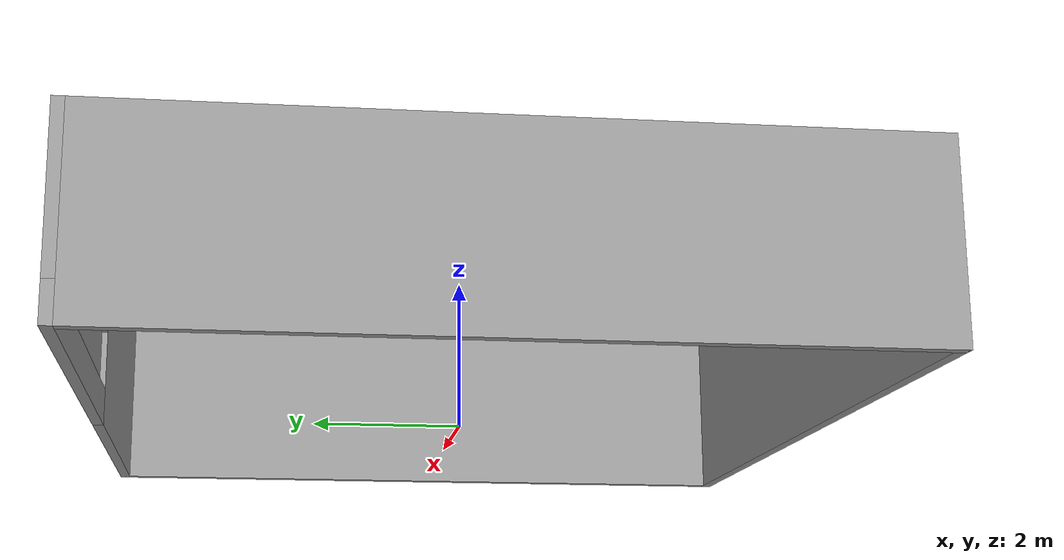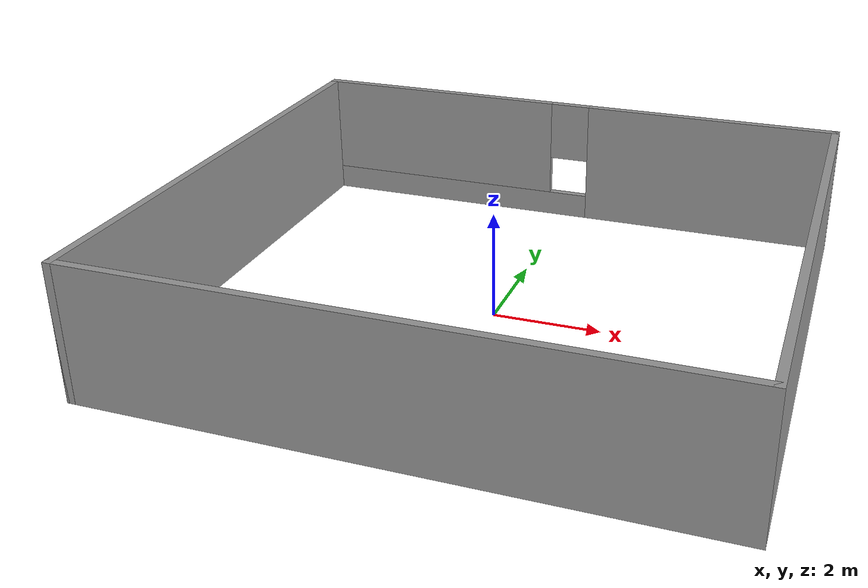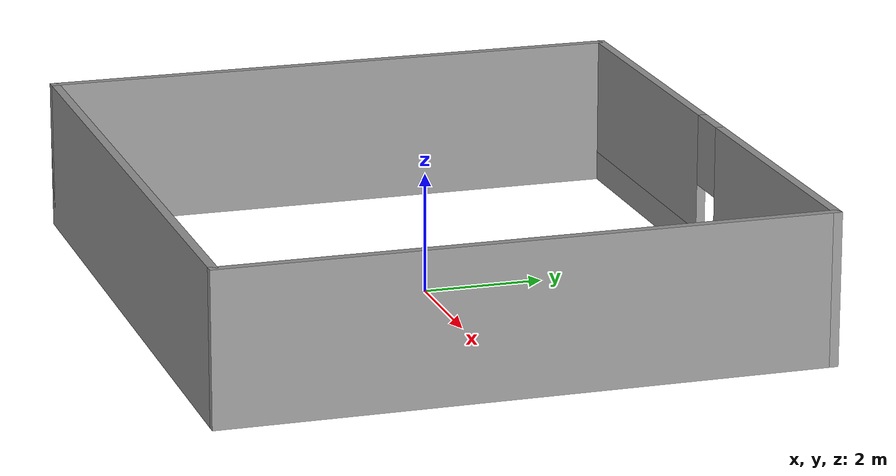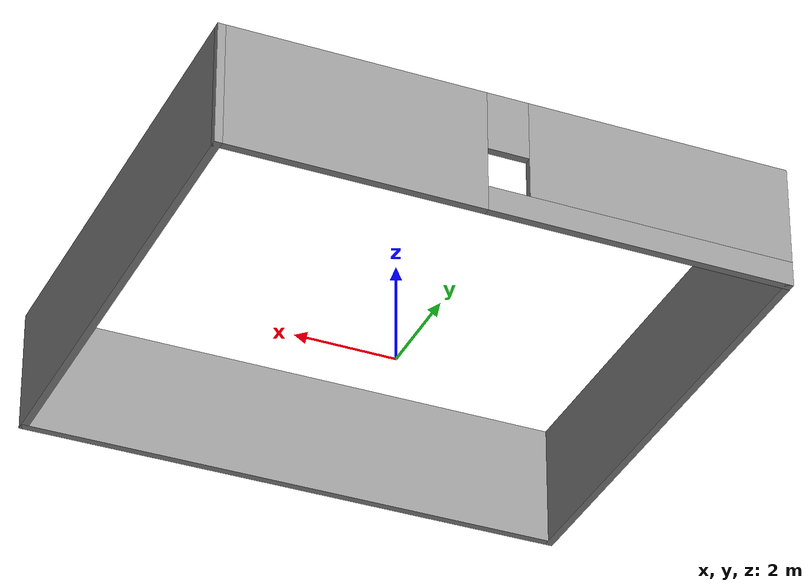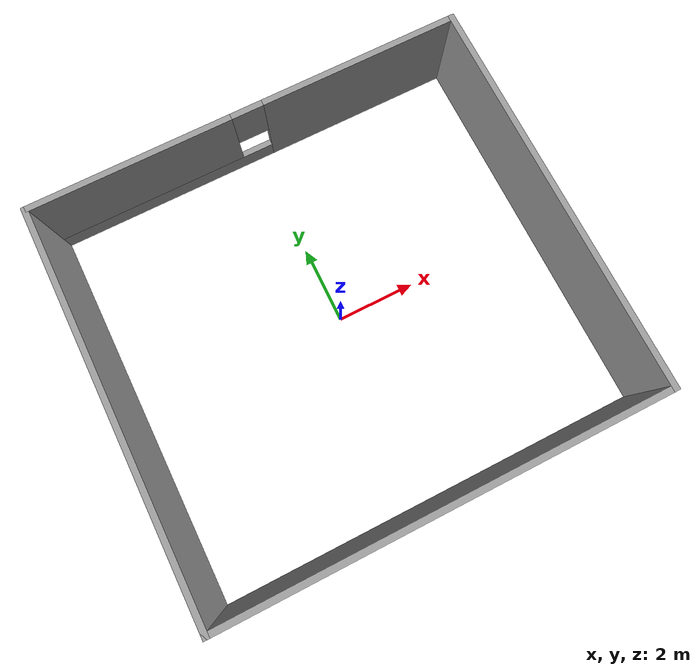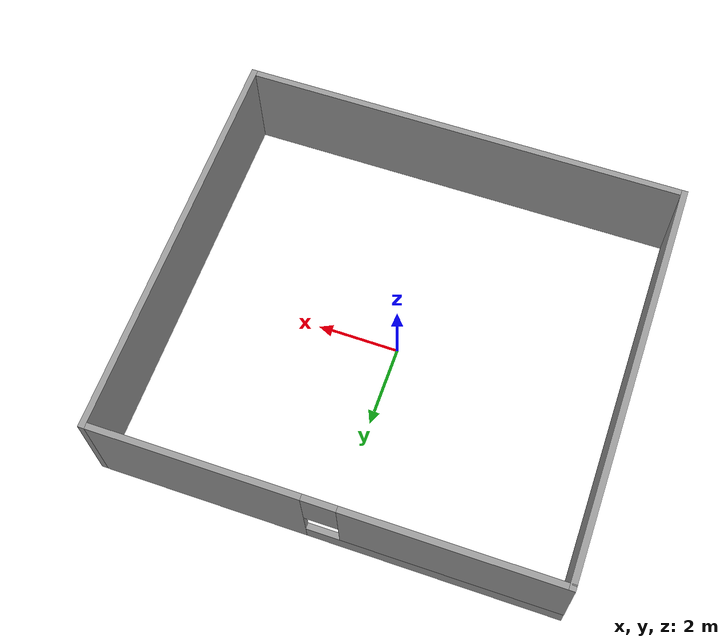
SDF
<?xml version='1.0'?>
<sdf version='1.6'>
  <model name='Walls'>
    <link name='Wall_3'>
      <pose frame=''>-5.425 0 0 0 0 -1.5708</pose>
      <self_collide>0</self_collide>
      <enable_wind>0</enable_wind>
      <kinematic>0</kinematic>
      <visual name='Wall_3_Visual'>
        <pose frame=''>0 0 1.25 0 -0 0</pose>
        <geometry>
          <box>
            <size>10 0.15 2.5</size>
          </box>
        </geometry>
        <material>
          <script>
            <uri>file://media/materials/scripts/gazebo.material</uri>
            <name>Gazebo/Grey</name>
          </script>
          <ambient>1 1 1 1</ambient>
          <shader type='pixel'/>
        </material>
        <meta>
          <layer>0</layer>
        </meta>
        <transparency>0</transparency>
        <cast_shadows>1</cast_shadows>
      </visual>
      <collision name='Wall_3_Collision'>
        <laser_retro>0</laser_retro>
        <max_contacts>10</max_contacts>
        <pose frame=''>0 0 1.25 0 -0 0</pose>
        <geometry>
          <box>
            <size>10 0.15 2.5</size>
          </box>
        </geometry>
        <surface>
          <friction>
            <ode>
              <mu>1</mu>
              <mu2>1</mu2>
              <fdir1>0 0 0</fdir1>
              <slip1>0</slip1>
              <slip2>0</slip2>
            </ode>
            <torsional>
              <coefficient>1</coefficient>
              <patch_radius>0</patch_radius>
              <surface_radius>0</surface_radius>
              <use_patch_radius>1</use_patch_radius>
              <ode>
                <slip>0</slip>
              </ode>
            </torsional>
          </friction>
          <bounce>
            <restitution_coefficient>0</restitution_coefficient>
            <threshold>1e+06</threshold>
          </bounce>
          <contact>
            <collide_without_contact>0</collide_without_contact>
            <collide_without_contact_bitmask>1</collide_without_contact_bitmask>
            <collide_bitmask>1</collide_bitmask>
            <ode>
              <soft_cfm>0</soft_cfm>
              <soft_erp>0.2</soft_erp>
              <kp>1e+13</kp>
              <kd>1</kd>
              <max_vel>0.01</max_vel>
              <min_depth>0</min_depth>
            </ode>
            <bullet>
              <split_impulse>1</split_impulse>
              <split_impulse_penetration_threshold>-0.01</split_impulse_penetration_threshold>
              <soft_cfm>0</soft_cfm>
              <soft_erp>0.2</soft_erp>
              <kp>1e+13</kp>
              <kd>1</kd>
            </bullet>
          </contact>
        </surface>
      </collision>
    </link>
    <link name='Wall_4'>
      <pose frame=''>0 -4.925 0 0 -0 0</pose>
      <self_collide>0</self_collide>
      <enable_wind>0</enable_wind>
      <kinematic>0</kinematic>
      <visual name='Wall_4_Visual'>
        <pose frame=''>0 0 1.25 0 -0 0</pose>
        <geometry>
          <box>
            <size>11 0.15 2.5</size>
          </box>
        </geometry>
        <material>
          <script>
            <uri>file://media/materials/scripts/gazebo.material</uri>
            <name>Gazebo/Grey</name>
          </script>
          <ambient>1 1 1 1</ambient>
          <shader type='pixel'/>
        </material>
        <meta>
          <layer>0</layer>
        </meta>
        <transparency>0</transparency>
        <cast_shadows>1</cast_shadows>
      </visual>
      <collision name='Wall_4_Collision'>
        <laser_retro>0</laser_retro>
        <max_contacts>10</max_contacts>
        <pose frame=''>0 0 1.25 0 -0 0</pose>
        <geometry>
          <box>
            <size>11 0.15 2.5</size>
          </box>
        </geometry>
        <surface>
          <friction>
            <ode>
              <mu>1</mu>
              <mu2>1</mu2>
              <fdir1>0 0 0</fdir1>
              <slip1>0</slip1>
              <slip2>0</slip2>
            </ode>
            <torsional>
              <coefficient>1</coefficient>
              <patch_radius>0</patch_radius>
              <surface_radius>0</surface_radius>
              <use_patch_radius>1</use_patch_radius>
              <ode>
                <slip>0</slip>
              </ode>
            </torsional>
          </friction>
          <bounce>
            <restitution_coefficient>0</restitution_coefficient>
            <threshold>1e+06</threshold>
          </bounce>
          <contact>
            <collide_without_contact>0</collide_without_contact>
            <collide_without_contact_bitmask>1</collide_without_contact_bitmask>
            <collide_bitmask>1</collide_bitmask>
            <ode>
              <soft_cfm>0</soft_cfm>
              <soft_erp>0.2</soft_erp>
              <kp>1e+13</kp>
              <kd>1</kd>
              <max_vel>0.01</max_vel>
              <min_depth>0</min_depth>
            </ode>
            <bullet>
              <split_impulse>1</split_impulse>
              <split_impulse_penetration_threshold>-0.01</split_impulse_penetration_threshold>
              <soft_cfm>0</soft_cfm>
              <soft_erp>0.2</soft_erp>
              <kp>1e+13</kp>
              <kd>1</kd>
            </bullet>
          </contact>
        </surface>
      </collision>
    </link>
    <link name='Wall_5'>
      <pose frame=''>5.425 0 0 0 -0 1.5708</pose>
      <self_collide>0</self_collide>
      <enable_wind>0</enable_wind>
      <kinematic>0</kinematic>
      <visual name='Wall_5_Visual'>
        <pose frame=''>0 0 1.25 0 -0 0</pose>
        <geometry>
          <box>
            <size>10 0.15 2.5</size>
          </box>
        </geometry>
        <material>
          <script>
            <uri>file://media/materials/scripts/gazebo.material</uri>
            <name>Gazebo/Grey</name>
          </script>
          <ambient>1 1 1 1</ambient>
          <shader type='pixel'/>
        </material>
        <meta>
          <layer>0</layer>
        </meta>
        <transparency>0</transparency>
        <cast_shadows>1</cast_shadows>
      </visual>
      <collision name='Wall_5_Collision'>
        <laser_retro>0</laser_retro>
        <max_contacts>10</max_contacts>
        <pose frame=''>0 0 1.25 0 -0 0</pose>
        <geometry>
          <box>
            <size>10 0.15 2.5</size>
          </box>
        </geometry>
        <surface>
          <friction>
            <ode>
              <mu>1</mu>
              <mu2>1</mu2>
              <fdir1>0 0 0</fdir1>
              <slip1>0</slip1>
              <slip2>0</slip2>
            </ode>
            <torsional>
              <coefficient>1</coefficient>
              <patch_radius>0</patch_radius>
              <surface_radius>0</surface_radius>
              <use_patch_radius>1</use_patch_radius>
              <ode>
                <slip>0</slip>
              </ode>
            </torsional>
          </friction>
          <bounce>
            <restitution_coefficient>0</restitution_coefficient>
            <threshold>1e+06</threshold>
          </bounce>
          <contact>
            <collide_without_contact>0</collide_without_contact>
            <collide_without_contact_bitmask>1</collide_without_contact_bitmask>
            <collide_bitmask>1</collide_bitmask>
            <ode>
              <soft_cfm>0</soft_cfm>
              <soft_erp>0.2</soft_erp>
              <kp>1e+13</kp>
              <kd>1</kd>
              <max_vel>0.01</max_vel>
              <min_depth>0</min_depth>
            </ode>
            <bullet>
              <split_impulse>1</split_impulse>
              <split_impulse_penetration_threshold>-0.01</split_impulse_penetration_threshold>
              <soft_cfm>0</soft_cfm>
              <soft_erp>0.2</soft_erp>
              <kp>1e+13</kp>
              <kd>1</kd>
            </bullet>
          </contact>
        </surface>
      </collision>
    </link>
    <link name='Wall_6'>
      <pose frame=''>0 4.925 0 0 -0 3.14159</pose>
      <self_collide>0</self_collide>
      <enable_wind>0</enable_wind>
      <kinematic>0</kinematic>
      <visual name='Wall_6_Visual_0'>
        <pose frame=''>-2.96625 0 1.25 0 -0 0</pose>
        <geometry>
          <box>
            <size>5.0675 0.15 2.5</size>
          </box>
        </geometry>
        <material>
          <script>
            <uri>file://media/materials/scripts/gazebo.material</uri>
            <name>Gazebo/Grey</name>
          </script>
          <ambient>1 1 1 1</ambient>
          <shader type='pixel'/>
        </material>
        <meta>
          <layer>0</layer>
        </meta>
        <transparency>0</transparency>
        <cast_shadows>1</cast_shadows>
      </visual>
      <visual name='Wall_6_Visual_1'>
        <pose frame=''>2.53375 0 0.25 0 -0 0</pose>
        <geometry>
          <box>
            <size>5.9325 0.15 0.5</size>
          </box>
        </geometry>
        <material>
          <script>
            <uri>file://media/materials/scripts/gazebo.material</uri>
            <name>Gazebo/Grey</name>
          </script>
          <ambient>1 1 1 1</ambient>
          <shader type='pixel'/>
        </material>
        <meta>
          <layer>0</layer>
        </meta>
        <transparency>0</transparency>
        <cast_shadows>1</cast_shadows>
      </visual>
      <visual name='Wall_6_Visual_2'>
        <pose frame=''>2.93375 0 1.5 0 -0 0</pose>
        <geometry>
          <box>
            <size>5.1325 0.15 2</size>
          </box>
        </geometry>
        <material>
          <script>
            <uri>file://media/materials/scripts/gazebo.material</uri>
            <name>Gazebo/Grey</name>
          </script>
          <ambient>1 1 1 1</ambient>
          <shader type='pixel'/>
        </material>
        <meta>
          <layer>0</layer>
        </meta>
        <transparency>0</transparency>
        <cast_shadows>1</cast_shadows>
      </visual>
      <visual name='Wall_6_Visual_3'>
        <pose frame=''>-0.032496 0 1.9 0 -0 0</pose>
        <geometry>
          <box>
            <size>0.8 0.15 1.2</size>
          </box>
        </geometry>
        <material>
          <script>
            <uri>file://media/materials/scripts/gazebo.material</uri>
            <name>Gazebo/Grey</name>
          </script>
          <ambient>1 1 1 1</ambient>
          <shader type='pixel'/>
        </material>
        <meta>
          <layer>0</layer>
        </meta>
        <transparency>0</transparency>
        <cast_shadows>1</cast_shadows>
      </visual>
      <collision name='Wall_6_Collision_0'>
        <laser_retro>0</laser_retro>
        <max_contacts>10</max_contacts>
        <pose frame=''>-2.96625 0 1.25 0 -0 0</pose>
        <geometry>
          <box>
            <size>5.0675 0.15 2.5</size>
          </box>
        </geometry>
        <surface>
          <friction>
            <ode>
              <mu>1</mu>
              <mu2>1</mu2>
              <fdir1>0 0 0</fdir1>
              <slip1>0</slip1>
              <slip2>0</slip2>
            </ode>
            <torsional>
              <coefficient>1</coefficient>
              <patch_radius>0</patch_radius>
              <surface_radius>0</surface_radius>
              <use_patch_radius>1</use_patch_radius>
              <ode>
                <slip>0</slip>
              </ode>
            </torsional>
          </friction>
          <bounce>
            <restitution_coefficient>0</restitution_coefficient>
            <threshold>1e+06</threshold>
          </bounce>
          <contact>
            <collide_without_contact>0</collide_without_contact>
            <collide_without_contact_bitmask>1</collide_without_contact_bitmask>
            <collide_bitmask>1</collide_bitmask>
            <ode>
              <soft_cfm>0</soft_cfm>
              <soft_erp>0.2</soft_erp>
              <kp>1e+13</kp>
              <kd>1</kd>
              <max_vel>0.01</max_vel>
              <min_depth>0</min_depth>
            </ode>
            <bullet>
              <split_impulse>1</split_impulse>
              <split_impulse_penetration_threshold>-0.01</split_impulse_penetration_threshold>
              <soft_cfm>0</soft_cfm>
              <soft_erp>0.2</soft_erp>
              <kp>1e+13</kp>
              <kd>1</kd>
            </bullet>
          </contact>
        </surface>
      </collision>
      <collision name='Wall_6_Collision_1'>
        <laser_retro>0</laser_retro>
        <max_contacts>10</max_contacts>
        <pose frame=''>2.53375 0 0.25 0 -0 0</pose>
        <geometry>
          <box>
            <size>5.9325 0.15 0.5</size>
          </box>
        </geometry>
        <surface>
          <friction>
            <ode>
              <mu>1</mu>
              <mu2>1</mu2>
              <fdir1>0 0 0</fdir1>
              <slip1>0</slip1>
              <slip2>0</slip2>
            </ode>
            <torsional>
              <coefficient>1</coefficient>
              <patch_radius>0</patch_radius>
              <surface_radius>0</surface_radius>
              <use_patch_radius>1</use_patch_radius>
              <ode>
                <slip>0</slip>
              </ode>
            </torsional>
          </friction>
          <bounce>
            <restitution_coefficient>0</restitution_coefficient>
            <threshold>1e+06</threshold>
          </bounce>
          <contact>
            <collide_without_contact>0</collide_without_contact>
            <collide_without_contact_bitmask>1</collide_without_contact_bitmask>
            <collide_bitmask>1</collide_bitmask>
            <ode>
              <soft_cfm>0</soft_cfm>
              <soft_erp>0.2</soft_erp>
              <kp>1e+13</kp>
              <kd>1</kd>
              <max_vel>0.01</max_vel>
              <min_depth>0</min_depth>
            </ode>
            <bullet>
              <split_impulse>1</split_impulse>
              <split_impulse_penetration_threshold>-0.01</split_impulse_penetration_threshold>
              <soft_cfm>0</soft_cfm>
              <soft_erp>0.2</soft_erp>
              <kp>1e+13</kp>
              <kd>1</kd>
            </bullet>
          </contact>
        </surface>
      </collision>
      <collision name='Wall_6_Collision_2'>
        <laser_retro>0</laser_retro>
        <max_contacts>10</max_contacts>
        <pose frame=''>2.93375 0 1.5 0 -0 0</pose>
        <geometry>
          <box>
            <size>5.1325 0.15 2</size>
          </box>
        </geometry>
        <surface>
          <friction>
            <ode>
              <mu>1</mu>
              <mu2>1</mu2>
              <fdir1>0 0 0</fdir1>
              <slip1>0</slip1>
              <slip2>0</slip2>
            </ode>
            <torsional>
              <coefficient>1</coefficient>
              <patch_radius>0</patch_radius>
              <surface_radius>0</surface_radius>
              <use_patch_radius>1</use_patch_radius>
              <ode>
                <slip>0</slip>
              </ode>
            </torsional>
          </friction>
          <bounce>
            <restitution_coefficient>0</restitution_coefficient>
            <threshold>1e+06</threshold>
          </bounce>
          <contact>
            <collide_without_contact>0</collide_without_contact>
            <collide_without_contact_bitmask>1</collide_without_contact_bitmask>
            <collide_bitmask>1</collide_bitmask>
            <ode>
              <soft_cfm>0</soft_cfm>
              <soft_erp>0.2</soft_erp>
              <kp>1e+13</kp>
              <kd>1</kd>
              <max_vel>0.01</max_vel>
              <min_depth>0</min_depth>
            </ode>
            <bullet>
              <split_impulse>1</split_impulse>
              <split_impulse_penetration_threshold>-0.01</split_impulse_penetration_threshold>
              <soft_cfm>0</soft_cfm>
              <soft_erp>0.2</soft_erp>
              <kp>1e+13</kp>
              <kd>1</kd>
            </bullet>
          </contact>
        </surface>
      </collision>
      <collision name='Wall_6_Collision_3'>
        <laser_retro>0</laser_retro>
        <max_contacts>10</max_contacts>
        <pose frame=''>-0.032496 0 1.9 0 -0 0</pose>
        <geometry>
          <box>
            <size>0.8 0.15 1.2</size>
          </box>
        </geometry>
        <surface>
          <friction>
            <ode>
              <mu>1</mu>
              <mu2>1</mu2>
              <fdir1>0 0 0</fdir1>
              <slip1>0</slip1>
              <slip2>0</slip2>
            </ode>
            <torsional>
              <coefficient>1</coefficient>
              <patch_radius>0</patch_radius>
              <surface_radius>0</surface_radius>
              <use_patch_radius>1</use_patch_radius>
              <ode>
                <slip>0</slip>
              </ode>
            </torsional>
          </friction>
          <bounce>
            <restitution_coefficient>0</restitution_coefficient>
            <threshold>1e+06</threshold>
          </bounce>
          <contact>
            <collide_without_contact>0</collide_without_contact>
            <collide_without_contact_bitmask>1</collide_without_contact_bitmask>
            <collide_bitmask>1</collide_bitmask>
            <ode>
              <soft_cfm>0</soft_cfm>
              <soft_erp>0.2</soft_erp>
              <kp>1e+13</kp>
              <kd>1</kd>
              <max_vel>0.01</max_vel>
              <min_depth>0</min_depth>
            </ode>
            <bullet>
              <split_impulse>1</split_impulse>
              <split_impulse_penetration_threshold>-0.01</split_impulse_penetration_threshold>
              <soft_cfm>0</soft_cfm>
              <soft_erp>0.2</soft_erp>
              <kp>1e+13</kp>
              <kd>1</kd>
            </bullet>
          </contact>
        </surface>
      </collision>
    </link>
    <static>1</static>
    <allow_auto_disable>1</allow_auto_disable>
  </model>
</sdf>
